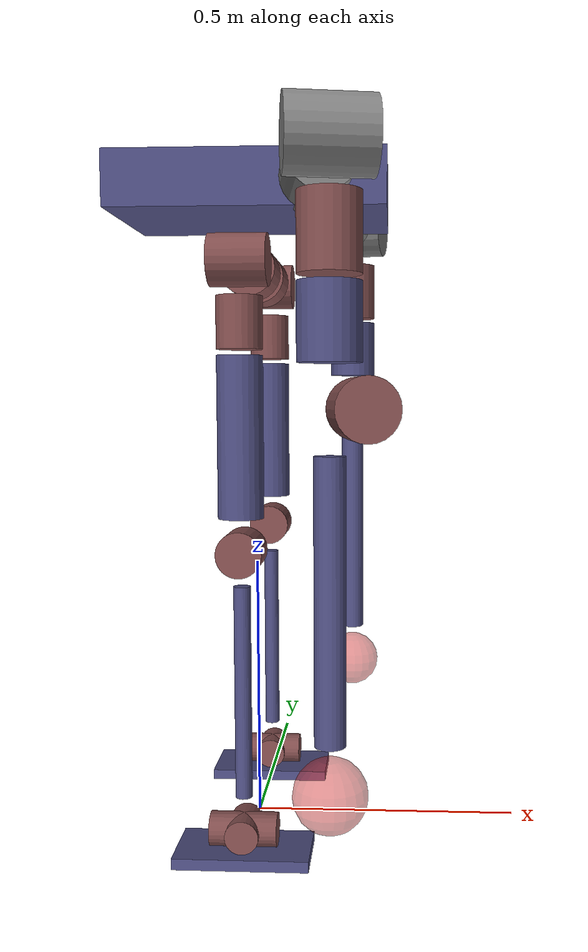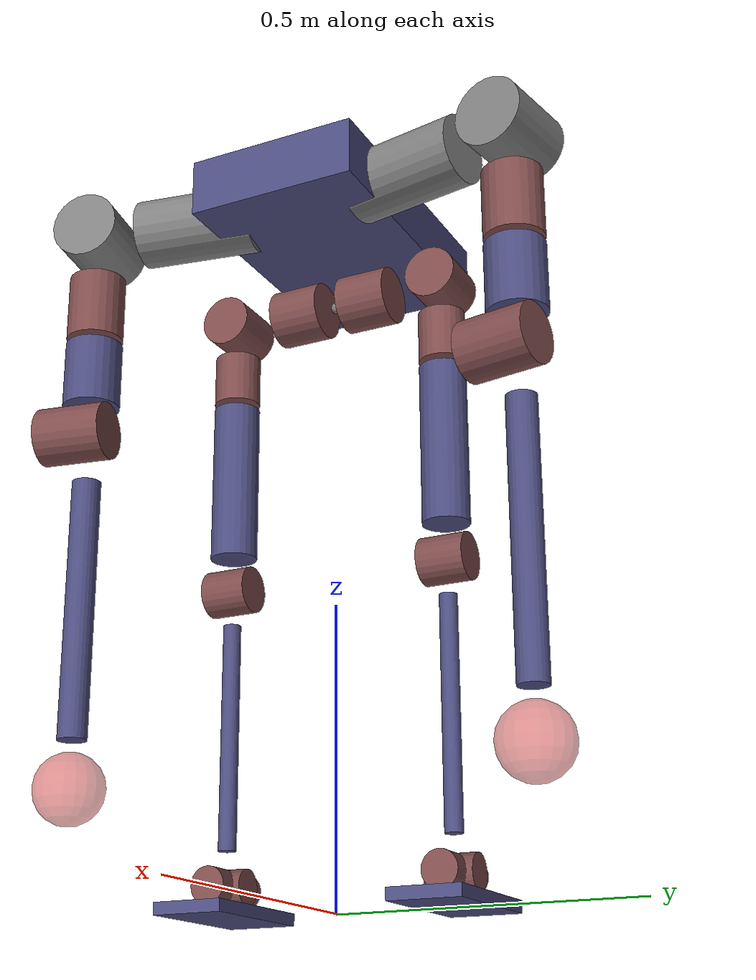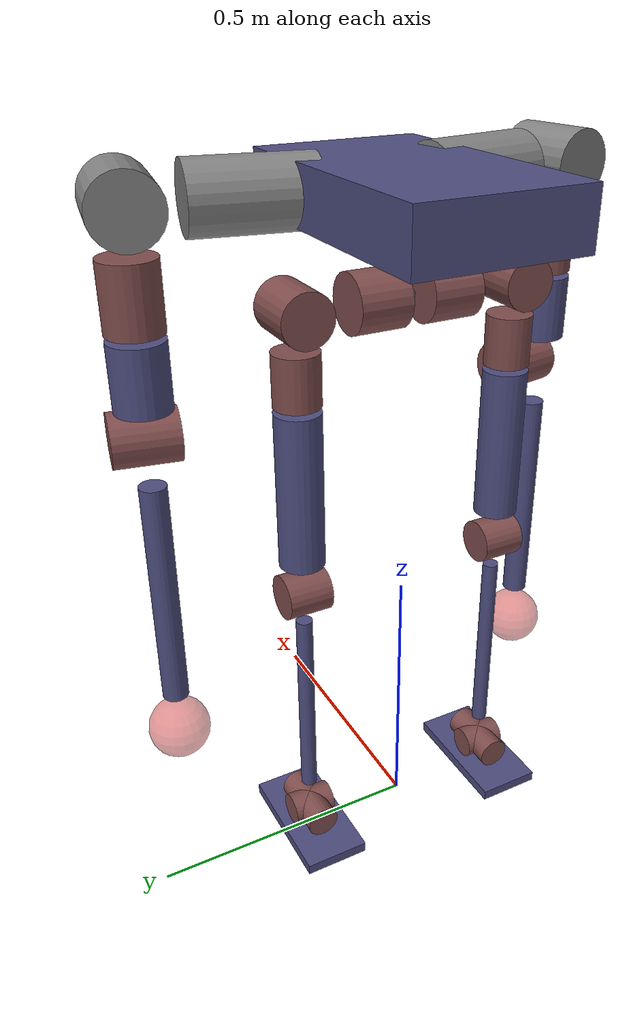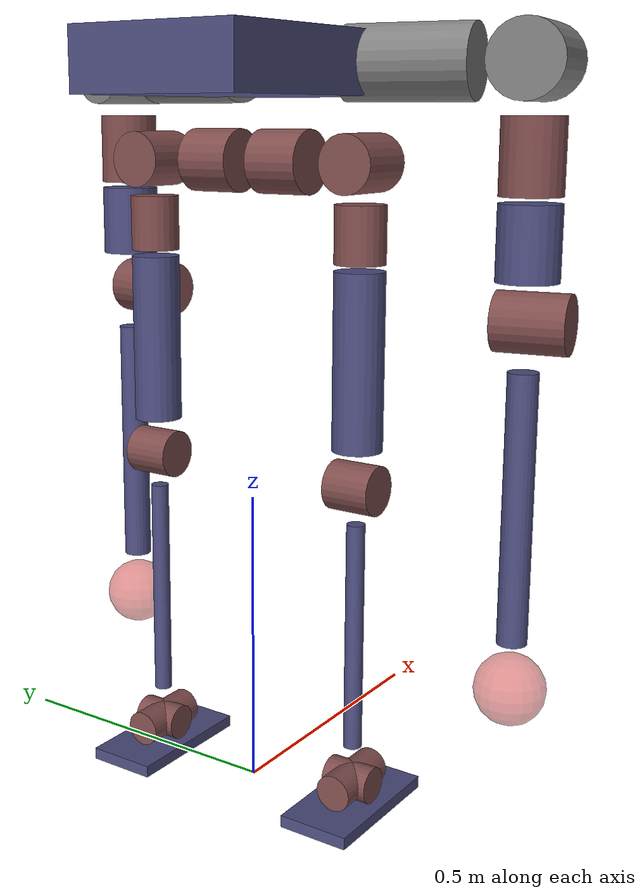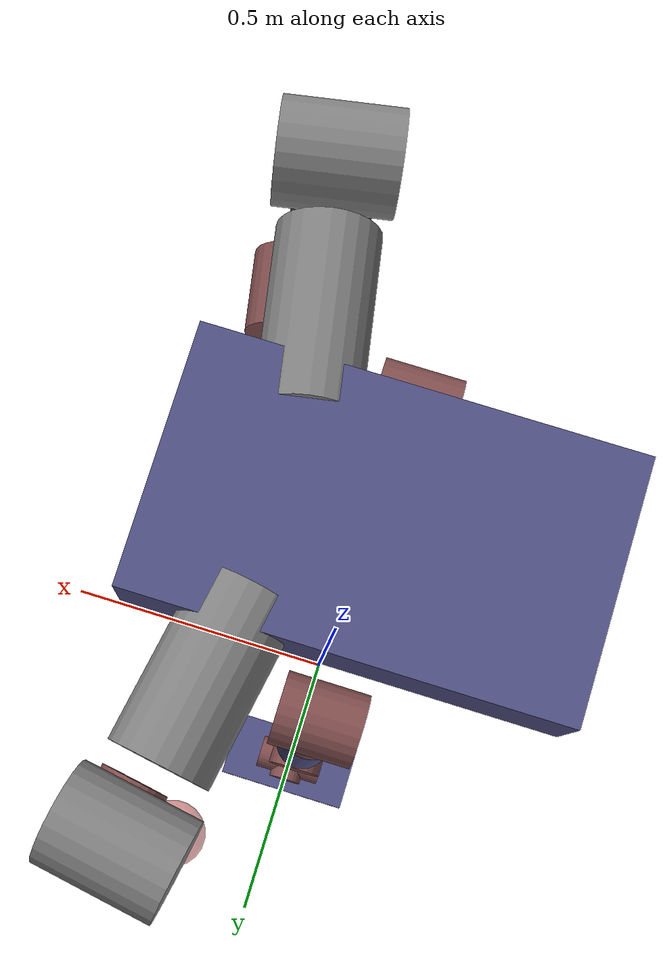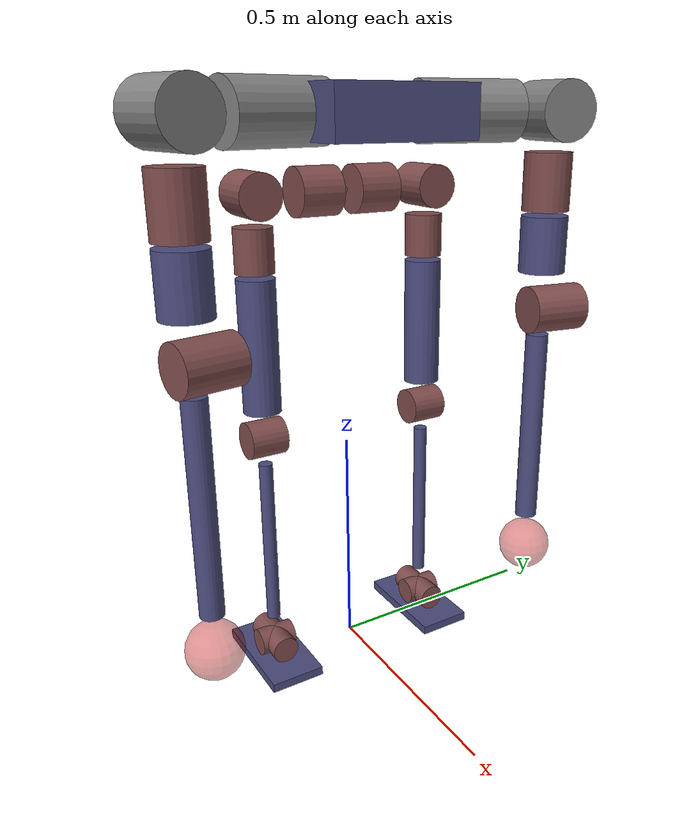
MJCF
<mujoco>
  <compiler coordinate="local" angle="degree"/>
  <option timestep="0.001" iterations="100" tolerance="1e-10" solver="Newton" gravity="0 0 -9.81"/>

  <visual>
    <map stiffness="2" stiffnessrot="100"/>
    <rgba haze="0.5 0.5 0.5 1"/>
    <quality shadowsize="2048" offsamples="16"/>
    <headlight ambient="0.5 0.5 0.5"  diffuse="0.4 0.4 0.4" specular="0.5 0.5 0.5"/>
  </visual>

  <asset>
    <texture type="skybox" builtin="gradient" rgb1="0.5 0.5 0.5" rgb2="0.5 0.5 0.5" width="512" height="512"/>
  </asset>

  <worldbody>
    <light mode="trackcom" target="model" directional="false" diffuse="0.3 0.3 0.3" specular="0.5 0.5 0.5" pos="4 0 4.0" dir="-1 0 -1" castshadow="true"/>

    <body name="model">
      <freejoint/>
      <geom type="box" pos="0 0 1.2" size="0.25 0.15 0.05" mass="10" rgba="0.3 0.3 0.5 1"/>

      <site name="ahrs" pos="0 0 1.2" euler="0 0 0" type="sphere" size="0.01"/>
      <site name="base" pos="0 0 1.05" euler="0 0 0" type="sphere" size="0.01"/>

      <body pos="0 0.10 1.05">
	<joint name="joint1" type="hinge" pos="0 0 0" axis="0 -1 0" frictionloss="0.1" damping="0.5"/>
	<geom type="cylinder" fromto="0 -0.08 0 0 0.01 0" size="0.05" euler="90 0 0" mass="1.5" rgba="0.5 0.3 0.3 1"/>
	<body>
	  <joint name="joint2" type="hinge" pos="0 0.10 0" axis="1 0 0" frictionloss="0.1" damping="0.5"/>
	  <geom type="cylinder" pos="0 0.10 0" euler="0 90 0" size="0.045 0.05" mass="1.5" rgba="0.5 0.3 0.3 1"/>
	  <body>
	    <joint name="joint3" type="hinge" pos="0 0.10 -0.10" axis="0 0 1" frictionloss="0.1" damping="0.5"/>
	    <geom type="cylinder" fromto="0 0.10 -0.06   0 0.10 -0.15" size="0.04" mass="1.5" rgba="0.5 0.3 0.3 1"/>
	    <geom type="cylinder" fromto="0 0.10 -0.16  0 0.10 -0.44" size="0.04" mass="1.0" rgba="0.3 0.3 0.5 1"/>
	    <body>
	      <joint name="joint4" type="hinge" pos="0 0.10 -0.5" axis="0 -1 0" frictionloss="0.1" damping="0.5"/>
	      <geom type="cylinder" pos="0 0.10 -0.5" euler="90 0 0" size="0.04 0.04" mass="1.5" rgba="0.5 0.3 0.3 1"/>
	      <geom type="cylinder" fromto="0 0.10 -0.56  0 0.10 -0.94" size="0.015" mass="0.5" contype="0" conaffinity="0" rgba="0.3 0.3 0.5 1"/>
	      <body>
		<joint name="joint5" type="hinge" pos="0 0.10 -1.0" axis="0 -1 0" frictionloss="0.1" damping="0.5"/>
		<geom type="cylinder" pos="0 0.10 -1.0" euler="90 0 0" size="0.03 0.04" mass="1.0" contype="0" conaffinity="0" rgba="0.5 0.3 0.3 1"/>
		<body>
		  <joint name="joint6" type="hinge" pos="0 0.10 -1.0" axis="1 0 0" frictionloss="0.1" damping="0.5"/>
		  <geom type="cylinder" pos="0 0.10 -1.0" euler="0 90 0" size="0.03 0.06" mass="0.75" contype="0" conaffinity="0" rgba="0.5 0.3 0.3 1"/>
		  <body>
		    <geom type="box" pos="0 0.10 -1.04" size="0.12 0.06 0.01" mass="0.75" contype="0" conaffinity="0" rgba="0.3 0.3 0.5 1"/>
		    <body>
 		      <geom type="box" pos="0 0.10 -1.04" size="0.12 0.06 0.01" mass="0.0" rgba="0.3 0.3 0.5 1" friction="1 0.005 0.0001"/>
		      <site name="endtip1" pos="0 0.10 -1.0" euler="0 0 0" type="sphere" size="0.01"/>
		    </body>
		  </body>
		</body>
	      </body>
	    </body>
	  </body>
	</body>
      </body>

      <body pos="0 -0.10 1.05">
	<joint name="joint7" type="hinge" pos="0 0 0" axis="0 -1 0" frictionloss="0.1" damping="0.5"/>
	<geom type="cylinder" fromto="0 -0.01 0 0 0.08 0" size="0.05" euler="90 0 0" mass="1.5" rgba="0.5 0.3 0.3 1"/>
	<body>
	  <joint name="joint8" type="hinge" pos="0 -0.10 0" axis="-1 0 0" frictionloss="0.1" damping="0.5"/>
	  <geom type="cylinder" pos="0 -0.10 0" euler="0 90 0" size="0.045 0.05" mass="1.5" rgba="0.5 0.3 0.3 1"/>
	  <body>
	    <joint name="joint9" type="hinge" pos="0 -0.10 -0.10" axis="0 0 -1" frictionloss="0.1" damping="0.5"/>
	    <geom type="cylinder" fromto="0 -0.10 -0.06  0 -0.10 -0.15" size="0.04" mass="1.5" rgba="0.5 0.3 0.3 1"/>
	    <geom type="cylinder" fromto="0 -0.10 -0.16  0 -0.10 -0.44" size="0.04" mass="1.0" rgba="0.3 0.3 0.5 1"/>
	    <body>
	      <joint name="joint10" type="hinge" pos="0 -0.10 -0.5" axis="0 -1 0" frictionloss="0.1" damping="0.5"/>
	      <geom type="cylinder" pos="0 -0.10 -0.5" euler="90 0 0" size="0.04 0.04" mass="1.5" rgba="0.5 0.3 0.3 1"/>
	      <geom type="cylinder" fromto="0 -0.10 -0.56  0 -0.10 -0.94" size="0.015" mass="0.5" contype="0" conaffinity="0" rgba="0.3 0.3 0.5 1"/>
	      <body>
		<joint name="joint11" type="hinge" pos="0 -0.10 -1.0" axis="0 -1 0" frictionloss="0.1" damping="0.5"/>
		<geom type="cylinder" pos="0 -0.10 -1.0" euler="90 0 0" size="0.03 0.04" mass="1.0" contype="0" conaffinity="0" rgba="0.5 0.3 0.3 1"/>
		<body>
		  <joint name="joint12" type="hinge" pos="0 -0.10 -1.0" axis="-1 0 0" frictionloss="0.1" damping="0.5"/>
		  <geom type="cylinder" pos="0 -0.10 -1.0" euler="0 90 0" size="0.03 0.06" mass="0.75" contype="0" conaffinity="0" rgba="0.5 0.3 0.3 1"/>
		  <body>
		    <geom type="box" pos="0 -0.10 -1.04" size="0.12 0.06 0.01" mass="0.75" contype="0" conaffinity="0" rgba="0.3 0.3 0.5 1"/>
		    <body>
		      <geom type="box" pos="0 -0.10 -1.04" size="0.12 0.06 0.01" mass="0.0" rgba="0.3 0.3 0.5 1" friction="1 0.005 0.0001"/>
		      <site name="endtip2" pos="0 -0.10 -1.0" euler="0 0 0" type="sphere" size="0.01"/>
		    </body>
		  </body>
		</body>
	      </body>
	    </body>
	  </body>
	</body>
      </body>

      <body pos="0.15 0.30 1.2"  euler="0 0 -10">
	<joint name="joint13" type="hinge" pos="0 0 0" axis="0 -1 0" frictionloss="0.1" damping="0.5"/>
	<geom type="cylinder" fromto="0 -0.20 0 0 0.01 0" size="0.06" euler="90 0 0" mass="1.5" rgba="0.5 0.5 0.5 1"/>
	<body>
	  <joint name="joint14" type="hinge" pos="0 0.10 0" axis="1 0 0" frictionloss="0.1" damping="0.5"/>
	  <geom type="cylinder" pos="0 0.10 0" euler="0 90 0" size="0.06 0.07" mass="1.5" rgba="0.5 0.5 0.5 1"/>
	  <body>
	    <joint name="joint15" type="hinge" pos="0 0.10 -0.10" axis="0 0 1" frictionloss="0.1" damping="0.5"/>
	    <geom type="cylinder" fromto="0 0.10 -0.08  0 0.10 -0.20" size="0.05" mass="1.5" rgba="0.5 0.3 0.3 1"/>
	    <geom type="cylinder" fromto="0 0.10 -0.21  0 0.10 -0.33" size="0.05" mass="1.0" rgba="0.3 0.3 0.5 1"/>
	    <body>
	      <joint name="joint16" type="hinge" pos="0.05 0.10 -0.4" axis="0 -1 0" frictionloss="0.1" damping="0.5"/>
	      <geom type="cylinder" pos="0.05 0.10 -0.4" euler="90 0 0" size="0.05 0.06" mass="1.5" rgba="0.5 0.3 0.3 1"/>
	      <geom type="cylinder" fromto="0 0.10 -0.47  0 0.10 -0.92" size="0.025" mass="0.5" contype="0" conaffinity="0" rgba="0.3 0.3 0.5 1"/>
	      <geom type="sphere" pos="0 0.10 -1.0" size="0.06" mass="1.0" rgba="0.8 0.2 0.2 0.5"/>
	    </body>
	  </body>
	</body>
      </body>

      <body pos="0.15 -0.30 1.2" euler="0 0 10">
	<joint name="joint17" type="hinge" pos="0 0 0" axis="0 -1 0" frictionloss="0.1" damping="0.5"/>
	<geom type="cylinder" fromto="0 -0.01 0 0 0.20 0" size="0.06" euler="90 0 0" mass="1.5" rgba="0.5 0.5 0.5 1"/>
	<body>
	  <joint name="joint18" type="hinge" pos="0 -0.10 0" axis="-1 0 0" frictionloss="0.1" damping="0.5"/>
	  <geom type="cylinder" pos="0 -0.10 0" euler="0 90 0" size="0.06 0.07" mass="1.5" rgba="0.5 0.5 0.5 1"/>
	  <body>
	    <joint name="joint19" type="hinge" pos="0 -0.10 -0.10" axis="0 0 -1" frictionloss="0.1" damping="0.5"/>
	    <geom type="cylinder" fromto="0 -0.10 -0.08  0 -0.10 -0.20" size="0.05" mass="1.5" rgba="0.5 0.3 0.3 1"/>
	    <geom type="cylinder" fromto="0 -0.10 -0.21  0 -0.10 -0.33" size="0.05" mass="1.0" rgba="0.3 0.3 0.5 1"/>
	    <body>
	      <joint name="joint20" type="hinge" pos="0.05 -0.10 -0.4" axis="0 -1 0" frictionloss="0.1" damping="0.5"/>
	      <geom type="cylinder" pos="0.05 -0.10 -0.4" euler="90 0 0" size="0.05 0.06" mass="1.5" rgba="0.5 0.3 0.3 1"/>
	      <geom type="cylinder" fromto="0 -0.10 -0.47  0 -0.10 -0.92" size="0.025" mass="0.5" contype="0" conaffinity="0" rgba="0.3 0.3 0.5 1"/>
	      <geom type="sphere" pos="0 -0.10 -1.0" size="0.06" mass="1.0" rgba="0.8 0.2 0.2 0.5"/>
	    </body>
	  </body>
	</body>
      </body>

    </body>

  </worldbody>

  <equality>
    <weld body1="model" active="true"/>
  </equality>

  <actuator>
    <motor joint="joint1" />
    <motor joint="joint2" />
    <motor joint="joint3" />
    <motor joint="joint4" />
    <motor joint="joint5" />
    <motor joint="joint6" />
    <motor joint="joint7" />
    <motor joint="joint8" />
    <motor joint="joint9" />
    <motor joint="joint10" />
    <motor joint="joint11" />
    <motor joint="joint12" />
  </actuator>

  <sensor>
    <jointpos joint="joint1"/>
    <jointpos joint="joint2"/>
    <jointpos joint="joint3"/>
    <jointpos joint="joint4"/>
    <jointpos joint="joint5"/>
    <jointpos joint="joint6"/>
    <jointpos joint="joint7"/>
    <jointpos joint="joint8"/>
    <jointpos joint="joint9"/>
    <jointpos joint="joint10"/>
    <jointpos joint="joint11"/>
    <jointpos joint="joint12"/>

    <jointvel joint="joint1"/>
    <jointvel joint="joint2"/>
    <jointvel joint="joint3"/>
    <jointvel joint="joint4"/>
    <jointvel joint="joint5"/>
    <jointvel joint="joint6"/>
    <jointvel joint="joint7"/>
    <jointvel joint="joint8"/>
    <jointvel joint="joint9"/>
    <jointvel joint="joint10"/>
    <jointvel joint="joint11"/>
    <jointvel joint="joint12"/>

    <force  site="endtip1"/>
    <torque site="endtip1"/>

    <force  site="endtip2"/>
    <torque site="endtip2"/>

    <framequat objtype="site" objname="ahrs"/>
    <accelerometer site="ahrs"/>
    <gyro site="ahrs"/>

    <framelinvel objtype="site" objname="ahrs"/>
    <framepos objtype="site" objname="base"/>

  </sensor>
</mujoco>
